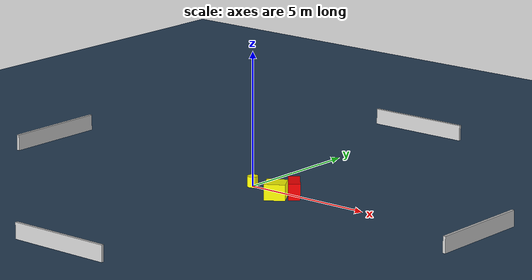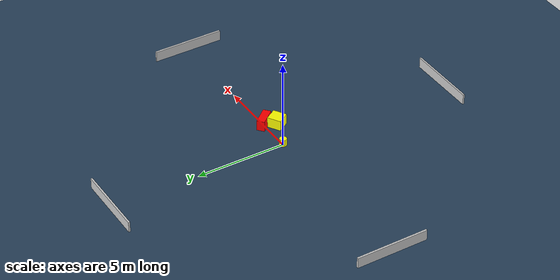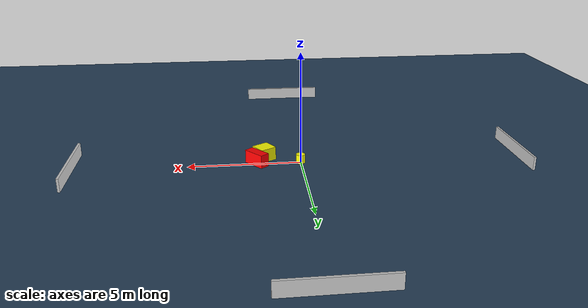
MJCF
<?xml version="1.0" ?>
<mujoco model="generated_environment">
  <option timestep="0.01" integrator="RK4" cone="elliptic"/>
  <default>
    <geom density="1"/>
  </default>
  <asset>
    <texture builtin="gradient" height="3072" name="skybox" rgb1="0.3 0.5 0.7" rgb2="0 0 0" type="skybox" width="512"/>
    <texture builtin="checker" height="300" name="groundplane" rgb1="0.2 0.3 0.4" rgb2="0.1 0.2 0.3" type="2d" width="300"/>
    <material name="groundplane" reflectance="0.2" texrepeat="5 5" texture="groundplane"/>
  </asset>
  <worldbody>
    <light dir="0 0 -1" directional="true" pos="0 0 1.5"/>
    <geom condim="3" friction="0.5 0.005 0.001" material="groundplane" name="floor" pos="0 0 0" size="0 0 0.05" type="plane"/>
    <body name="walls">
      <geom name="wall_1" condim="4" pos="-10.0 0.0 0.3" rgba="0.800000011920929 0.800000011920929 0.800000011920929 1.0" size="0.05 2.0 0.3" type="box"/>
      <geom name="wall_2" condim="4" pos="10.0 0.0 0.3" rgba="0.800000011920929 0.800000011920929 0.800000011920929 1.0" size="0.05 2.0 0.3" type="box"/>
      <geom name="wall_3" condim="4" pos="0.0 -10.0 0.3" rgba="0.800000011920929 0.800000011920929 0.800000011920929 1.0" size="2.0 0.05 0.3" type="box"/>
      <geom name="wall_4" condim="4" pos="0.0 10.0 0.3" rgba="0.800000011920929 0.800000011920929 0.800000011920929 1.0" size="2.0 0.05 0.3" type="box"/>
    </body>
    <body name="robot">
      <joint name="joint_x" type="slide" pos="0 0 0" axis="1 0 0"/>
      <joint name="joint_y" type="slide" pos="0 0 0" axis="0 1 0"/>
      <geom name="robot" type="cylinder" pos="0.0 0.0 0.2" size="0.2 0.2 0.0" mass="5.0" friction="1.0 0.005 0.0001" condim="4" rgba="1.0 1.0 0.0 1.0"/>
    </body>
    <body name="obstacle_1_movable">
      <geom name="obstacle_1_movable" condim="4" pos="1.5889914788435957 -0.6044850099873457 0.3" euler="0 0 31.402280568991287" friction="0.0 0.005 0.001" rgba="1.0 1.0 0.0 1.0" size="0.38120776967244363 0.3634596648055091 0.3" type="box" mass="0.1"/>
      <joint type="free"/>
    </body>
    <body name="obstacle_2_static">
      <geom name="obstacle_2_static" condim="4" pos="1.9510757271218744 -0.020010435961589825 0.3" euler="0 0 309.6461278698094" friction="0.0 0.005 0.001" rgba="1.0 0.0 0.0 1.0" size="0.51946137532931 0.2158287859796317 0.3" type="box"/>
    </body>
  </worldbody>
  <actuator>
    <motor name="actuator_x" joint="joint_x" gear="1" ctrlrange="-1 1"/>
    <motor name="actuator_y" joint="joint_y" gear="1" ctrlrange="-1 1"/>
  </actuator>
</mujoco>
